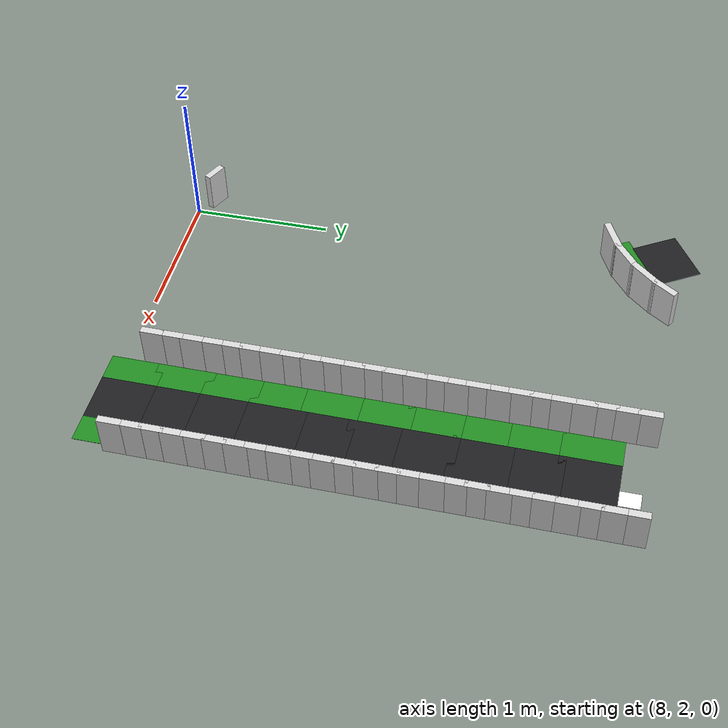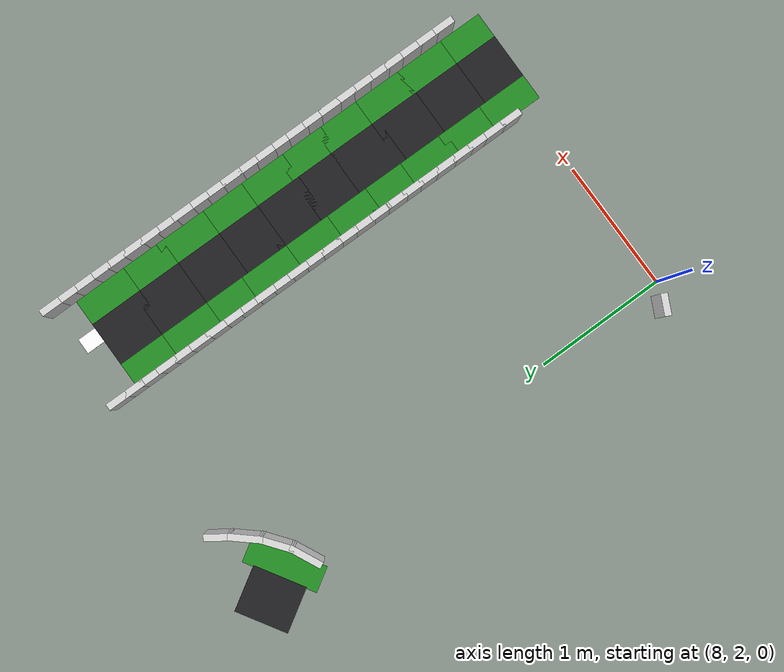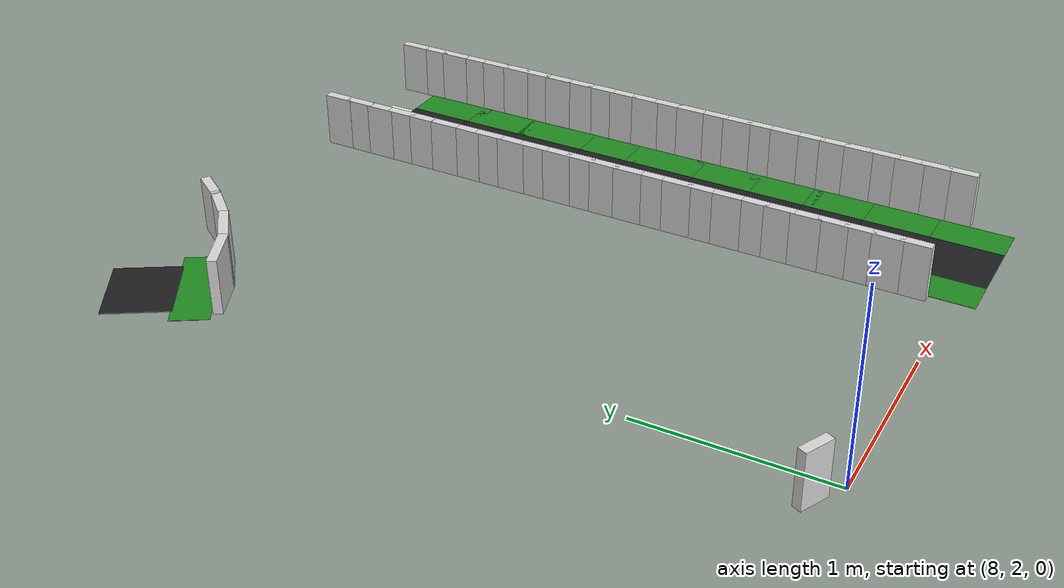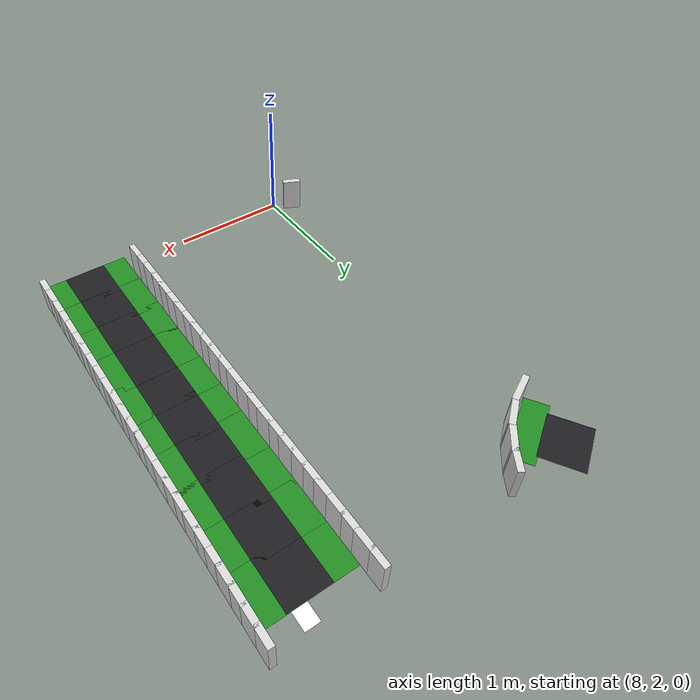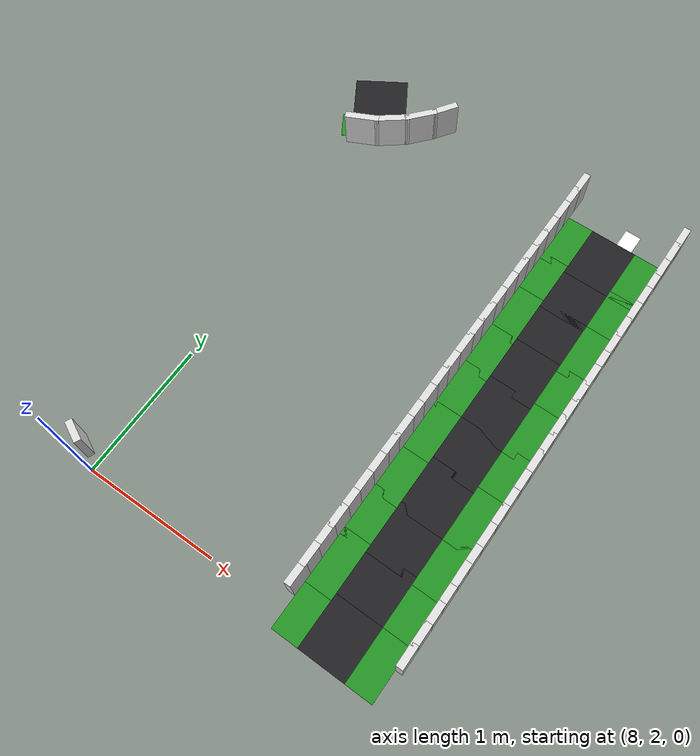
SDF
<sdf version="1.8">
 <world name="it_arena_track">
  <model name="it_arena_track_static">
   <static>true</static>
   <link name="surface_main_47">
    <pose>7.8082 5.5504 0.0015 0 0 -2.59347</pose>
    <collision name="surface_main_47_col">
     <geometry><box><size>0.4088 0.3500 0.0030</size></box></geometry>
    </collision>
    <visual name="surface_main_47_vis">
     <geometry><box><size>0.4088 0.3500 0.0030</size></box></geometry>
     <material><ambient>0.12 0.12 0.13 1</ambient><diffuse>0.12 0.12 0.13 1</diffuse></material>
    </visual>
   </link>
   <link name="surface_main_120">
    <pose>9.9361 2.0771 0.0015 0 0 1.56391</pose>
    <collision name="surface_main_120_col">
     <geometry><box><size>0.3910 0.3500 0.0030</size></box></geometry>
    </collision>
    <visual name="surface_main_120_vis">
     <geometry><box><size>0.3910 0.3500 0.0030</size></box></geometry>
     <material><ambient>0.12 0.12 0.13 1</ambient><diffuse>0.12 0.12 0.13 1</diffuse></material>
    </visual>
   </link>
   <link name="surface_main_121">
    <pose>9.9385 2.4270 0.0015 0 0 1.56408</pose>
    <collision name="surface_main_121_col">
     <geometry><box><size>0.4140 0.3500 0.0030</size></box></geometry>
    </collision>
    <visual name="surface_main_121_vis">
     <geometry><box><size>0.4140 0.3500 0.0030</size></box></geometry>
     <material><ambient>0.12 0.12 0.13 1</ambient><diffuse>0.12 0.12 0.13 1</diffuse></material>
    </visual>
   </link>
   <link name="surface_main_122">
    <pose>9.9409 2.7770 0.0015 0 0 1.56397</pose>
    <collision name="surface_main_122_col">
     <geometry><box><size>0.3910 0.3500 0.0030</size></box></geometry>
    </collision>
    <visual name="surface_main_122_vis">
     <geometry><box><size>0.3910 0.3500 0.0030</size></box></geometry>
     <material><ambient>0.12 0.12 0.13 1</ambient><diffuse>0.12 0.12 0.13 1</diffuse></material>
    </visual>
   </link>
   <link name="surface_main_123">
    <pose>9.9433 3.1269 0.0015 0 0 1.56407</pose>
    <collision name="surface_main_123_col">
     <geometry><box><size>0.4140 0.3500 0.0030</size></box></geometry>
    </collision>
    <visual name="surface_main_123_vis">
     <geometry><box><size>0.4140 0.3500 0.0030</size></box></geometry>
     <material><ambient>0.12 0.12 0.13 1</ambient><diffuse>0.12 0.12 0.13 1</diffuse></material>
    </visual>
   </link>
   <link name="surface_main_124">
    <pose>9.9456 3.4769 0.0015 0 0 1.56391</pose>
    <collision name="surface_main_124_col">
     <geometry><box><size>0.3910 0.3500 0.0030</size></box></geometry>
    </collision>
    <visual name="surface_main_124_vis">
     <geometry><box><size>0.3910 0.3500 0.0030</size></box></geometry>
     <material><ambient>0.12 0.12 0.13 1</ambient><diffuse>0.12 0.12 0.13 1</diffuse></material>
    </visual>
   </link>
   <link name="surface_main_125">
    <pose>9.9480 3.8269 0.0015 0 0 1.56396</pose>
    <collision name="surface_main_125_col">
     <geometry><box><size>0.4140 0.3500 0.0030</size></box></geometry>
    </collision>
    <visual name="surface_main_125_vis">
     <geometry><box><size>0.4140 0.3500 0.0030</size></box></geometry>
     <material><ambient>0.12 0.12 0.13 1</ambient><diffuse>0.12 0.12 0.13 1</diffuse></material>
    </visual>
   </link>
   <link name="surface_main_126">
    <pose>9.9504 4.1768 0.0015 0 0 1.56391</pose>
    <collision name="surface_main_126_col">
     <geometry><box><size>0.3910 0.3500 0.0030</size></box></geometry>
    </collision>
    <visual name="surface_main_126_vis">
     <geometry><box><size>0.3910 0.3500 0.0030</size></box></geometry>
     <material><ambient>0.12 0.12 0.13 1</ambient><diffuse>0.12 0.12 0.13 1</diffuse></material>
    </visual>
   </link>
   <link name="surface_main_127">
    <pose>9.9528 4.5268 0.0015 0 0 1.56408</pose>
    <collision name="surface_main_127_col">
     <geometry><box><size>0.4140 0.3500 0.0030</size></box></geometry>
    </collision>
    <visual name="surface_main_127_vis">
     <geometry><box><size>0.4140 0.3500 0.0030</size></box></geometry>
     <material><ambient>0.12 0.12 0.13 1</ambient><diffuse>0.12 0.12 0.13 1</diffuse></material>
    </visual>
   </link>
   <link name="surface_main_128">
    <pose>9.9552 4.8767 0.0015 0 0 1.56397</pose>
    <collision name="surface_main_128_col">
     <geometry><box><size>0.3910 0.3500 0.0030</size></box></geometry>
    </collision>
    <visual name="surface_main_128_vis">
     <geometry><box><size>0.3910 0.3500 0.0030</size></box></geometry>
     <material><ambient>0.12 0.12 0.13 1</ambient><diffuse>0.12 0.12 0.13 1</diffuse></material>
    </visual>
   </link>
   <link name="surface_main_129">
    <pose>9.9576 5.2267 0.0015 0 0 1.56407</pose>
    <collision name="surface_main_129_col">
     <geometry><box><size>0.4140 0.3500 0.0030</size></box></geometry>
    </collision>
    <visual name="surface_main_129_vis">
     <geometry><box><size>0.4140 0.3500 0.0030</size></box></geometry>
     <material><ambient>0.12 0.12 0.13 1</ambient><diffuse>0.12 0.12 0.13 1</diffuse></material>
    </visual>
   </link>
   <link name="grass_main_left_47">
    <pose>7.9485 5.3250 0.0010 0 0 -2.59097</pose>
    <collision name="grass_main_left_47_col">
     <geometry><box><size>0.5738 0.2000 0.0020</size></box></geometry>
    </collision>
    <visual name="grass_main_left_47_vis">
     <geometry><box><size>0.5738 0.2000 0.0020</size></box></geometry>
     <material><ambient>0.13 0.55 0.13 1</ambient><diffuse>0.13 0.55 0.13 1</diffuse></material>
    </visual>
   </link>
   <link name="grass_main_left_115">
    <pose>9.6612 2.0787 0.0010 0 0 1.56391</pose>
    <collision name="grass_main_left_115_col">
     <geometry><box><size>0.3910 0.2000 0.0020</size></box></geometry>
    </collision>
    <visual name="grass_main_left_115_vis">
     <geometry><box><size>0.3910 0.2000 0.0020</size></box></geometry>
     <material><ambient>0.13 0.55 0.13 1</ambient><diffuse>0.13 0.55 0.13 1</diffuse></material>
    </visual>
   </link>
   <link name="grass_main_left_116">
    <pose>9.6635 2.4290 0.0010 0 0 1.56408</pose>
    <collision name="grass_main_left_116_col">
     <geometry><box><size>0.4146 0.2000 0.0020</size></box></geometry>
    </collision>
    <visual name="grass_main_left_116_vis">
     <geometry><box><size>0.4146 0.2000 0.0020</size></box></geometry>
     <material><ambient>0.13 0.55 0.13 1</ambient><diffuse>0.13 0.55 0.13 1</diffuse></material>
    </visual>
   </link>
   <link name="grass_main_left_117">
    <pose>9.6659 2.7792 0.0010 0 0 1.56397</pose>
    <collision name="grass_main_left_117_col">
     <geometry><box><size>0.3909 0.2000 0.0020</size></box></geometry>
    </collision>
    <visual name="grass_main_left_117_vis">
     <geometry><box><size>0.3909 0.2000 0.0020</size></box></geometry>
     <material><ambient>0.13 0.55 0.13 1</ambient><diffuse>0.13 0.55 0.13 1</diffuse></material>
    </visual>
   </link>
   <link name="grass_main_left_118">
    <pose>9.6683 3.1289 0.0010 0 0 1.56407</pose>
    <collision name="grass_main_left_118_col">
     <geometry><box><size>0.4133 0.2000 0.0020</size></box></geometry>
    </collision>
    <visual name="grass_main_left_118_vis">
     <geometry><box><size>0.4133 0.2000 0.0020</size></box></geometry>
     <material><ambient>0.13 0.55 0.13 1</ambient><diffuse>0.13 0.55 0.13 1</diffuse></material>
    </visual>
   </link>
   <link name="grass_main_left_119">
    <pose>9.6706 3.4786 0.0010 0 0 1.56391</pose>
    <collision name="grass_main_left_119_col">
     <geometry><box><size>0.3910 0.2000 0.0020</size></box></geometry>
    </collision>
    <visual name="grass_main_left_119_vis">
     <geometry><box><size>0.3910 0.2000 0.0020</size></box></geometry>
     <material><ambient>0.13 0.55 0.13 1</ambient><diffuse>0.13 0.55 0.13 1</diffuse></material>
    </visual>
   </link>
   <link name="grass_main_left_120">
    <pose>9.6730 3.8285 0.0010 0 0 1.56396</pose>
    <collision name="grass_main_left_120_col">
     <geometry><box><size>0.4139 0.2000 0.0020</size></box></geometry>
    </collision>
    <visual name="grass_main_left_120_vis">
     <geometry><box><size>0.4139 0.2000 0.0020</size></box></geometry>
     <material><ambient>0.13 0.55 0.13 1</ambient><diffuse>0.13 0.55 0.13 1</diffuse></material>
    </visual>
   </link>
   <link name="grass_main_left_121">
    <pose>9.6754 4.1785 0.0010 0 0 1.56391</pose>
    <collision name="grass_main_left_121_col">
     <geometry><box><size>0.3910 0.2000 0.0020</size></box></geometry>
    </collision>
    <visual name="grass_main_left_121_vis">
     <geometry><box><size>0.3910 0.2000 0.0020</size></box></geometry>
     <material><ambient>0.13 0.55 0.13 1</ambient><diffuse>0.13 0.55 0.13 1</diffuse></material>
    </visual>
   </link>
   <link name="grass_main_left_122">
    <pose>9.6778 4.5287 0.0010 0 0 1.56408</pose>
    <collision name="grass_main_left_122_col">
     <geometry><box><size>0.4146 0.2000 0.0020</size></box></geometry>
    </collision>
    <visual name="grass_main_left_122_vis">
     <geometry><box><size>0.4146 0.2000 0.0020</size></box></geometry>
     <material><ambient>0.13 0.55 0.13 1</ambient><diffuse>0.13 0.55 0.13 1</diffuse></material>
    </visual>
   </link>
   <link name="grass_main_left_123">
    <pose>9.6802 4.8789 0.0010 0 0 1.56397</pose>
    <collision name="grass_main_left_123_col">
     <geometry><box><size>0.3909 0.2000 0.0020</size></box></geometry>
    </collision>
    <visual name="grass_main_left_123_vis">
     <geometry><box><size>0.3909 0.2000 0.0020</size></box></geometry>
     <material><ambient>0.13 0.55 0.13 1</ambient><diffuse>0.13 0.55 0.13 1</diffuse></material>
    </visual>
   </link>
   <link name="grass_main_left_124">
    <pose>9.6826 5.2286 0.0010 0 0 1.56407</pose>
    <collision name="grass_main_left_124_col">
     <geometry><box><size>0.4133 0.2000 0.0020</size></box></geometry>
    </collision>
    <visual name="grass_main_left_124_vis">
     <geometry><box><size>0.4133 0.2000 0.0020</size></box></geometry>
     <material><ambient>0.13 0.55 0.13 1</ambient><diffuse>0.13 0.55 0.13 1</diffuse></material>
    </visual>
   </link>
   <link name="grass_main_right_114">
    <pose>10.2111 2.0754 0.0010 0 0 1.56391</pose>
    <collision name="grass_main_right_114_col">
     <geometry><box><size>0.3909 0.2000 0.0020</size></box></geometry>
    </collision>
    <visual name="grass_main_right_114_vis">
     <geometry><box><size>0.3909 0.2000 0.0020</size></box></geometry>
     <material><ambient>0.13 0.55 0.13 1</ambient><diffuse>0.13 0.55 0.13 1</diffuse></material>
    </visual>
   </link>
   <link name="grass_main_right_115">
    <pose>10.2135 2.4251 0.0010 0 0 1.56408</pose>
    <collision name="grass_main_right_115_col">
     <geometry><box><size>0.4133 0.2000 0.0020</size></box></geometry>
    </collision>
    <visual name="grass_main_right_115_vis">
     <geometry><box><size>0.4133 0.2000 0.0020</size></box></geometry>
     <material><ambient>0.13 0.55 0.13 1</ambient><diffuse>0.13 0.55 0.13 1</diffuse></material>
    </visual>
   </link>
   <link name="grass_main_right_116">
    <pose>10.2159 2.7748 0.0010 0 0 1.56397</pose>
    <collision name="grass_main_right_116_col">
     <geometry><box><size>0.3910 0.2000 0.0020</size></box></geometry>
    </collision>
    <visual name="grass_main_right_116_vis">
     <geometry><box><size>0.3910 0.2000 0.0020</size></box></geometry>
     <material><ambient>0.13 0.55 0.13 1</ambient><diffuse>0.13 0.55 0.13 1</diffuse></material>
    </visual>
   </link>
   <link name="grass_main_right_117">
    <pose>10.2183 3.1250 0.0010 0 0 1.56407</pose>
    <collision name="grass_main_right_117_col">
     <geometry><box><size>0.4146 0.2000 0.0020</size></box></geometry>
    </collision>
    <visual name="grass_main_right_117_vis">
     <geometry><box><size>0.4146 0.2000 0.0020</size></box></geometry>
     <material><ambient>0.13 0.55 0.13 1</ambient><diffuse>0.13 0.55 0.13 1</diffuse></material>
    </visual>
   </link>
   <link name="grass_main_right_118">
    <pose>10.2206 3.4752 0.0010 0 0 1.56391</pose>
    <collision name="grass_main_right_118_col">
     <geometry><box><size>0.3909 0.2000 0.0020</size></box></geometry>
    </collision>
    <visual name="grass_main_right_118_vis">
     <geometry><box><size>0.3909 0.2000 0.0020</size></box></geometry>
     <material><ambient>0.13 0.55 0.13 1</ambient><diffuse>0.13 0.55 0.13 1</diffuse></material>
    </visual>
   </link>
   <link name="grass_main_right_119">
    <pose>10.2230 3.8252 0.0010 0 0 1.56396</pose>
    <collision name="grass_main_right_119_col">
     <geometry><box><size>0.4140 0.2000 0.0020</size></box></geometry>
    </collision>
    <visual name="grass_main_right_119_vis">
     <geometry><box><size>0.4140 0.2000 0.0020</size></box></geometry>
     <material><ambient>0.13 0.55 0.13 1</ambient><diffuse>0.13 0.55 0.13 1</diffuse></material>
    </visual>
   </link>
   <link name="grass_main_right_120">
    <pose>10.2254 4.1751 0.0010 0 0 1.56391</pose>
    <collision name="grass_main_right_120_col">
     <geometry><box><size>0.3909 0.2000 0.0020</size></box></geometry>
    </collision>
    <visual name="grass_main_right_120_vis">
     <geometry><box><size>0.3909 0.2000 0.0020</size></box></geometry>
     <material><ambient>0.13 0.55 0.13 1</ambient><diffuse>0.13 0.55 0.13 1</diffuse></material>
    </visual>
   </link>
   <link name="grass_main_right_121">
    <pose>10.2278 4.5248 0.0010 0 0 1.56408</pose>
    <collision name="grass_main_right_121_col">
     <geometry><box><size>0.4133 0.2000 0.0020</size></box></geometry>
    </collision>
    <visual name="grass_main_right_121_vis">
     <geometry><box><size>0.4133 0.2000 0.0020</size></box></geometry>
     <material><ambient>0.13 0.55 0.13 1</ambient><diffuse>0.13 0.55 0.13 1</diffuse></material>
    </visual>
   </link>
   <link name="grass_main_right_122">
    <pose>10.2302 4.8745 0.0010 0 0 1.56397</pose>
    <collision name="grass_main_right_122_col">
     <geometry><box><size>0.3910 0.2000 0.0020</size></box></geometry>
    </collision>
    <visual name="grass_main_right_122_vis">
     <geometry><box><size>0.3910 0.2000 0.0020</size></box></geometry>
     <material><ambient>0.13 0.55 0.13 1</ambient><diffuse>0.13 0.55 0.13 1</diffuse></material>
    </visual>
   </link>
   <link name="grass_main_right_123">
    <pose>10.2326 5.2247 0.0010 0 0 1.56407</pose>
    <collision name="grass_main_right_123_col">
     <geometry><box><size>0.4146 0.2000 0.0020</size></box></geometry>
    </collision>
    <visual name="grass_main_right_123_vis">
     <geometry><box><size>0.4146 0.2000 0.0020</size></box></geometry>
     <material><ambient>0.13 0.55 0.13 1</ambient><diffuse>0.13 0.55 0.13 1</diffuse></material>
    </visual>
   </link>
   <link name="walls_main_left_116">
    <pose>8.3938 5.5530 0.1500 0 0 -2.16776</pose>
    <collision name="walls_main_left_116_col">
     <geometry><box><size>0.1933 0.0500 0.3000</size></box></geometry>
     <surface><friction><ode><mu>0.8</mu><mu2>0.8</mu2></ode></friction></surface>
    </collision>
    <visual name="walls_main_left_116_vis">
     <geometry><box><size>0.1933 0.0500 0.3000</size></box></geometry>
     <material><ambient>0.85 0.85 0.85 1</ambient><diffuse>0.85 0.85 0.85 1</diffuse></material>
    </visual>
   </link>
   <link name="walls_main_left_117">
    <pose>8.2761 5.4033 0.1500 0 0 -2.29173</pose>
    <collision name="walls_main_left_117_col">
     <geometry><box><size>0.2456 0.0500 0.3000</size></box></geometry>
     <surface><friction><ode><mu>0.8</mu><mu2>0.8</mu2></ode></friction></surface>
    </collision>
    <visual name="walls_main_left_117_vis">
     <geometry><box><size>0.2456 0.0500 0.3000</size></box></geometry>
     <material><ambient>0.85 0.85 0.85 1</ambient><diffuse>0.85 0.85 0.85 1</diffuse></material>
    </visual>
   </link>
   <link name="walls_main_left_118">
    <pose>8.1164 5.2550 0.1500 0 0 -2.48950</pose>
    <collision name="walls_main_left_118_col">
     <geometry><box><size>0.2582 0.0500 0.3000</size></box></geometry>
     <surface><friction><ode><mu>0.8</mu><mu2>0.8</mu2></ode></friction></surface>
    </collision>
    <visual name="walls_main_left_118_vis">
     <geometry><box><size>0.2582 0.0500 0.3000</size></box></geometry>
     <material><ambient>0.85 0.85 0.85 1</ambient><diffuse>0.85 0.85 0.85 1</diffuse></material>
    </visual>
   </link>
   <link name="walls_main_left_119">
    <pose>7.9278 5.1399 0.1500 0 0 -2.69994</pose>
    <collision name="walls_main_left_119_col">
     <geometry><box><size>0.2528 0.0500 0.3000</size></box></geometry>
     <surface><friction><ode><mu>0.8</mu><mu2>0.8</mu2></ode></friction></surface>
    </collision>
    <visual name="walls_main_left_119_vis">
     <geometry><box><size>0.2528 0.0500 0.3000</size></box></geometry>
     <material><ambient>0.85 0.85 0.85 1</ambient><diffuse>0.85 0.85 0.85 1</diffuse></material>
    </visual>
   </link>
   <link name="walls_main_left_268">
    <pose>7.8570 2.1067 0.1500 0 0 -0.44761</pose>
    <collision name="walls_main_left_268_col">
     <geometry><box><size>0.1610 0.0500 0.3000</size></box></geometry>
     <surface><friction><ode><mu>0.8</mu><mu2>0.8</mu2></ode></friction></surface>
    </collision>
    <visual name="walls_main_left_268_vis">
     <geometry><box><size>0.1610 0.0500 0.3000</size></box></geometry>
     <material><ambient>0.85 0.85 0.85 1</ambient><diffuse>0.85 0.85 0.85 1</diffuse></material>
    </visual>
   </link>
   <link name="walls_main_left_291">
    <pose>9.5370 2.1997 0.1500 0 0 1.56407</pose>
    <collision name="walls_main_left_291_col">
     <geometry><box><size>0.1605 0.0500 0.3000</size></box></geometry>
     <surface><friction><ode><mu>0.8</mu><mu2>0.8</mu2></ode></friction></surface>
    </collision>
    <visual name="walls_main_left_291_vis">
     <geometry><box><size>0.1605 0.0500 0.3000</size></box></geometry>
     <material><ambient>0.85 0.85 0.85 1</ambient><diffuse>0.85 0.85 0.85 1</diffuse></material>
    </visual>
   </link>
   <link name="walls_main_left_292">
    <pose>9.5379 2.3394 0.1500 0 0 1.56408</pose>
    <collision name="walls_main_left_292_col">
     <geometry><box><size>0.1610 0.0500 0.3000</size></box></geometry>
     <surface><friction><ode><mu>0.8</mu><mu2>0.8</mu2></ode></friction></surface>
    </collision>
    <visual name="walls_main_left_292_vis">
     <geometry><box><size>0.1610 0.0500 0.3000</size></box></geometry>
     <material><ambient>0.85 0.85 0.85 1</ambient><diffuse>0.85 0.85 0.85 1</diffuse></material>
    </visual>
   </link>
   <link name="walls_main_left_293">
    <pose>9.5389 2.4794 0.1500 0 0 1.56408</pose>
    <collision name="walls_main_left_293_col">
     <geometry><box><size>0.1610 0.0500 0.3000</size></box></geometry>
     <surface><friction><ode><mu>0.8</mu><mu2>0.8</mu2></ode></friction></surface>
    </collision>
    <visual name="walls_main_left_293_vis">
     <geometry><box><size>0.1610 0.0500 0.3000</size></box></geometry>
     <material><ambient>0.85 0.85 0.85 1</ambient><diffuse>0.85 0.85 0.85 1</diffuse></material>
    </visual>
   </link>
   <link name="walls_main_left_294">
    <pose>9.5398 2.6197 0.1500 0 0 1.56395</pose>
    <collision name="walls_main_left_294_col">
     <geometry><box><size>0.1617 0.0500 0.3000</size></box></geometry>
     <surface><friction><ode><mu>0.8</mu><mu2>0.8</mu2></ode></friction></surface>
    </collision>
    <visual name="walls_main_left_294_vis">
     <geometry><box><size>0.1617 0.0500 0.3000</size></box></geometry>
     <material><ambient>0.85 0.85 0.85 1</ambient><diffuse>0.85 0.85 0.85 1</diffuse></material>
    </visual>
   </link>
   <link name="walls_main_left_295">
    <pose>9.5407 2.7599 0.1500 0 0 1.56421</pose>
    <collision name="walls_main_left_295_col">
     <geometry><box><size>0.1608 0.0500 0.3000</size></box></geometry>
     <surface><friction><ode><mu>0.8</mu><mu2>0.8</mu2></ode></friction></surface>
    </collision>
    <visual name="walls_main_left_295_vis">
     <geometry><box><size>0.1608 0.0500 0.3000</size></box></geometry>
     <material><ambient>0.85 0.85 0.85 1</ambient><diffuse>0.85 0.85 0.85 1</diffuse></material>
    </visual>
   </link>
   <link name="walls_main_left_296">
    <pose>9.5417 2.8999 0.1500 0 0 1.56352</pose>
    <collision name="walls_main_left_296_col">
     <geometry><box><size>0.1613 0.0500 0.3000</size></box></geometry>
     <surface><friction><ode><mu>0.8</mu><mu2>0.8</mu2></ode></friction></surface>
    </collision>
    <visual name="walls_main_left_296_vis">
     <geometry><box><size>0.1613 0.0500 0.3000</size></box></geometry>
     <material><ambient>0.85 0.85 0.85 1</ambient><diffuse>0.85 0.85 0.85 1</diffuse></material>
    </visual>
   </link>
   <link name="walls_main_left_297">
    <pose>9.5427 3.0401 0.1500 0 0 1.56422</pose>
    <collision name="walls_main_left_297_col">
     <geometry><box><size>0.1612 0.0500 0.3000</size></box></geometry>
     <surface><friction><ode><mu>0.8</mu><mu2>0.8</mu2></ode></friction></surface>
    </collision>
    <visual name="walls_main_left_297_vis">
     <geometry><box><size>0.1612 0.0500 0.3000</size></box></geometry>
     <material><ambient>0.85 0.85 0.85 1</ambient><diffuse>0.85 0.85 0.85 1</diffuse></material>
    </visual>
   </link>
   <link name="walls_main_left_298">
    <pose>9.5436 3.1797 0.1500 0 0 1.56378</pose>
    <collision name="walls_main_left_298_col">
     <geometry><box><size>0.1601 0.0500 0.3000</size></box></geometry>
     <surface><friction><ode><mu>0.8</mu><mu2>0.8</mu2></ode></friction></surface>
    </collision>
    <visual name="walls_main_left_298_vis">
     <geometry><box><size>0.1601 0.0500 0.3000</size></box></geometry>
     <material><ambient>0.85 0.85 0.85 1</ambient><diffuse>0.85 0.85 0.85 1</diffuse></material>
    </visual>
   </link>
   <link name="walls_main_left_299">
    <pose>9.5446 3.3194 0.1500 0 0 1.56408</pose>
    <collision name="walls_main_left_299_col">
     <geometry><box><size>0.1612 0.0500 0.3000</size></box></geometry>
     <surface><friction><ode><mu>0.8</mu><mu2>0.8</mu2></ode></friction></surface>
    </collision>
    <visual name="walls_main_left_299_vis">
     <geometry><box><size>0.1612 0.0500 0.3000</size></box></geometry>
     <material><ambient>0.85 0.85 0.85 1</ambient><diffuse>0.85 0.85 0.85 1</diffuse></material>
    </visual>
   </link>
   <link name="walls_main_left_300">
    <pose>9.5455 3.4594 0.1500 0 0 1.56408</pose>
    <collision name="walls_main_left_300_col">
     <geometry><box><size>0.1607 0.0500 0.3000</size></box></geometry>
     <surface><friction><ode><mu>0.8</mu><mu2>0.8</mu2></ode></friction></surface>
    </collision>
    <visual name="walls_main_left_300_vis">
     <geometry><box><size>0.1607 0.0500 0.3000</size></box></geometry>
     <material><ambient>0.85 0.85 0.85 1</ambient><diffuse>0.85 0.85 0.85 1</diffuse></material>
    </visual>
   </link>
   <link name="walls_main_left_301">
    <pose>9.5465 3.5994 0.1500 0 0 1.56408</pose>
    <collision name="walls_main_left_301_col">
     <geometry><box><size>0.1612 0.0500 0.3000</size></box></geometry>
     <surface><friction><ode><mu>0.8</mu><mu2>0.8</mu2></ode></friction></surface>
    </collision>
    <visual name="walls_main_left_301_vis">
     <geometry><box><size>0.1612 0.0500 0.3000</size></box></geometry>
     <material><ambient>0.85 0.85 0.85 1</ambient><diffuse>0.85 0.85 0.85 1</diffuse></material>
    </visual>
   </link>
   <link name="walls_main_left_302">
    <pose>9.5474 3.7394 0.1500 0 0 1.56408</pose>
    <collision name="walls_main_left_302_col">
     <geometry><box><size>0.1608 0.0500 0.3000</size></box></geometry>
     <surface><friction><ode><mu>0.8</mu><mu2>0.8</mu2></ode></friction></surface>
    </collision>
    <visual name="walls_main_left_302_vis">
     <geometry><box><size>0.1608 0.0500 0.3000</size></box></geometry>
     <material><ambient>0.85 0.85 0.85 1</ambient><diffuse>0.85 0.85 0.85 1</diffuse></material>
    </visual>
   </link>
   <link name="walls_main_left_303">
    <pose>9.5484 3.8796 0.1500 0 0 1.56381</pose>
    <collision name="walls_main_left_303_col">
     <geometry><box><size>0.1619 0.0500 0.3000</size></box></geometry>
     <surface><friction><ode><mu>0.8</mu><mu2>0.8</mu2></ode></friction></surface>
    </collision>
    <visual name="walls_main_left_303_vis">
     <geometry><box><size>0.1619 0.0500 0.3000</size></box></geometry>
     <material><ambient>0.85 0.85 0.85 1</ambient><diffuse>0.85 0.85 0.85 1</diffuse></material>
    </visual>
   </link>
   <link name="walls_main_left_304">
    <pose>9.5494 4.0197 0.1500 0 0 1.56364</pose>
    <collision name="walls_main_left_304_col">
     <geometry><box><size>0.1603 0.0500 0.3000</size></box></geometry>
     <surface><friction><ode><mu>0.8</mu><mu2>0.8</mu2></ode></friction></surface>
    </collision>
    <visual name="walls_main_left_304_vis">
     <geometry><box><size>0.1603 0.0500 0.3000</size></box></geometry>
     <material><ambient>0.85 0.85 0.85 1</ambient><diffuse>0.85 0.85 0.85 1</diffuse></material>
    </visual>
   </link>
   <link name="walls_main_left_305">
    <pose>9.5503 4.1595 0.1500 0 0 1.56410</pose>
    <collision name="walls_main_left_305_col">
     <geometry><box><size>0.1612 0.0500 0.3000</size></box></geometry>
     <surface><friction><ode><mu>0.8</mu><mu2>0.8</mu2></ode></friction></surface>
    </collision>
    <visual name="walls_main_left_305_vis">
     <geometry><box><size>0.1612 0.0500 0.3000</size></box></geometry>
     <material><ambient>0.85 0.85 0.85 1</ambient><diffuse>0.85 0.85 0.85 1</diffuse></material>
    </visual>
   </link>
   <link name="walls_main_left_306">
    <pose>9.5513 4.2994 0.1500 0 0 1.56407</pose>
    <collision name="walls_main_left_306_col">
     <geometry><box><size>0.1605 0.0500 0.3000</size></box></geometry>
     <surface><friction><ode><mu>0.8</mu><mu2>0.8</mu2></ode></friction></surface>
    </collision>
    <visual name="walls_main_left_306_vis">
     <geometry><box><size>0.1605 0.0500 0.3000</size></box></geometry>
     <material><ambient>0.85 0.85 0.85 1</ambient><diffuse>0.85 0.85 0.85 1</diffuse></material>
    </visual>
   </link>
   <link name="walls_main_left_307">
    <pose>9.5522 4.4392 0.1500 0 0 1.56408</pose>
    <collision name="walls_main_left_307_col">
     <geometry><box><size>0.1610 0.0500 0.3000</size></box></geometry>
     <surface><friction><ode><mu>0.8</mu><mu2>0.8</mu2></ode></friction></surface>
    </collision>
    <visual name="walls_main_left_307_vis">
     <geometry><box><size>0.1610 0.0500 0.3000</size></box></geometry>
     <material><ambient>0.85 0.85 0.85 1</ambient><diffuse>0.85 0.85 0.85 1</diffuse></material>
    </visual>
   </link>
   <link name="walls_main_left_308">
    <pose>9.5532 4.5792 0.1500 0 0 1.56408</pose>
    <collision name="walls_main_left_308_col">
     <geometry><box><size>0.1610 0.0500 0.3000</size></box></geometry>
     <surface><friction><ode><mu>0.8</mu><mu2>0.8</mu2></ode></friction></surface>
    </collision>
    <visual name="walls_main_left_308_vis">
     <geometry><box><size>0.1610 0.0500 0.3000</size></box></geometry>
     <material><ambient>0.85 0.85 0.85 1</ambient><diffuse>0.85 0.85 0.85 1</diffuse></material>
    </visual>
   </link>
   <link name="walls_main_left_309">
    <pose>9.5541 4.7194 0.1500 0 0 1.56396</pose>
    <collision name="walls_main_left_309_col">
     <geometry><box><size>0.1616 0.0500 0.3000</size></box></geometry>
     <surface><friction><ode><mu>0.8</mu><mu2>0.8</mu2></ode></friction></surface>
    </collision>
    <visual name="walls_main_left_309_vis">
     <geometry><box><size>0.1616 0.0500 0.3000</size></box></geometry>
     <material><ambient>0.85 0.85 0.85 1</ambient><diffuse>0.85 0.85 0.85 1</diffuse></material>
    </visual>
   </link>
   <link name="walls_main_left_310">
    <pose>9.5550 4.8596 0.1500 0 0 1.56421</pose>
    <collision name="walls_main_left_310_col">
     <geometry><box><size>0.1608 0.0500 0.3000</size></box></geometry>
     <surface><friction><ode><mu>0.8</mu><mu2>0.8</mu2></ode></friction></surface>
    </collision>
    <visual name="walls_main_left_310_vis">
     <geometry><box><size>0.1608 0.0500 0.3000</size></box></geometry>
     <material><ambient>0.85 0.85 0.85 1</ambient><diffuse>0.85 0.85 0.85 1</diffuse></material>
    </visual>
   </link>
   <link name="walls_main_left_311">
    <pose>9.5560 4.9996 0.1500 0 0 1.56353</pose>
    <collision name="walls_main_left_311_col">
     <geometry><box><size>0.1613 0.0500 0.3000</size></box></geometry>
     <surface><friction><ode><mu>0.8</mu><mu2>0.8</mu2></ode></friction></surface>
    </collision>
    <visual name="walls_main_left_311_vis">
     <geometry><box><size>0.1613 0.0500 0.3000</size></box></geometry>
     <material><ambient>0.85 0.85 0.85 1</ambient><diffuse>0.85 0.85 0.85 1</diffuse></material>
    </visual>
   </link>
   <link name="walls_main_left_312">
    <pose>9.5570 5.1398 0.1500 0 0 1.56422</pose>
    <collision name="walls_main_left_312_col">
     <geometry><box><size>0.1612 0.0500 0.3000</size></box></geometry>
     <surface><friction><ode><mu>0.8</mu><mu2>0.8</mu2></ode></friction></surface>
    </collision>
    <visual name="walls_main_left_312_vis">
     <geometry><box><size>0.1612 0.0500 0.3000</size></box></geometry>
     <material><ambient>0.85 0.85 0.85 1</ambient><diffuse>0.85 0.85 0.85 1</diffuse></material>
    </visual>
   </link>
   <link name="walls_main_left_313">
    <pose>9.5579 5.2795 0.1500 0 0 1.56378</pose>
    <collision name="walls_main_left_313_col">
     <geometry><box><size>0.1601 0.0500 0.3000</size></box></geometry>
     <surface><friction><ode><mu>0.8</mu><mu2>0.8</mu2></ode></friction></surface>
    </collision>
    <visual name="walls_main_left_313_vis">
     <geometry><box><size>0.1601 0.0500 0.3000</size></box></geometry>
     <material><ambient>0.85 0.85 0.85 1</ambient><diffuse>0.85 0.85 0.85 1</diffuse></material>
    </visual>
   </link>
   <link name="walls_main_left_314">
    <pose>9.5589 5.4192 0.1500 0 0 1.56408</pose>
    <collision name="walls_main_left_314_col">
     <geometry><box><size>0.1612 0.0500 0.3000</size></box></geometry>
     <surface><friction><ode><mu>0.8</mu><mu2>0.8</mu2></ode></friction></surface>
    </collision>
    <visual name="walls_main_left_314_vis">
     <geometry><box><size>0.1612 0.0500 0.3000</size></box></geometry>
     <material><ambient>0.85 0.85 0.85 1</ambient><diffuse>0.85 0.85 0.85 1</diffuse></material>
    </visual>
   </link>
   <link name="walls_main_left_315">
    <pose>9.5598 5.5593 0.1500 0 0 1.56408</pose>
    <collision name="walls_main_left_315_col">
     <geometry><box><size>0.1612 0.0500 0.3000</size></box></geometry>
     <surface><friction><ode><mu>0.8</mu><mu2>0.8</mu2></ode></friction></surface>
    </collision>
    <visual name="walls_main_left_315_vis">
     <geometry><box><size>0.1612 0.0500 0.3000</size></box></geometry>
     <material><ambient>0.85 0.85 0.85 1</ambient><diffuse>0.85 0.85 0.85 1</diffuse></material>
    </visual>
   </link>
   <link name="walls_main_right_287">
    <pose>10.3370 2.1945 0.1500 0 0 1.56407</pose>
    <collision name="walls_main_right_287_col">
     <geometry><box><size>0.1615 0.0500 0.3000</size></box></geometry>
     <surface><friction><ode><mu>0.8</mu><mu2>0.8</mu2></ode></friction></surface>
    </collision>
    <visual name="walls_main_right_287_vis">
     <geometry><box><size>0.1615 0.0500 0.3000</size></box></geometry>
     <material><ambient>0.85 0.85 0.85 1</ambient><diffuse>0.85 0.85 0.85 1</diffuse></material>
    </visual>
   </link>
   <link name="walls_main_right_288">
    <pose>10.3379 2.3346 0.1500 0 0 1.56408</pose>
    <collision name="walls_main_right_288_col">
     <geometry><box><size>0.1610 0.0500 0.3000</size></box></geometry>
     <surface><friction><ode><mu>0.8</mu><mu2>0.8</mu2></ode></friction></surface>
    </collision>
    <visual name="walls_main_right_288_vis">
     <geometry><box><size>0.1610 0.0500 0.3000</size></box></geometry>
     <material><ambient>0.85 0.85 0.85 1</ambient><diffuse>0.85 0.85 0.85 1</diffuse></material>
    </visual>
   </link>
   <link name="walls_main_right_289">
    <pose>10.3388 2.4746 0.1500 0 0 1.56408</pose>
    <collision name="walls_main_right_289_col">
     <geometry><box><size>0.1610 0.0500 0.3000</size></box></geometry>
     <surface><friction><ode><mu>0.8</mu><mu2>0.8</mu2></ode></friction></surface>
    </collision>
    <visual name="walls_main_right_289_vis">
     <geometry><box><size>0.1610 0.0500 0.3000</size></box></geometry>
     <material><ambient>0.85 0.85 0.85 1</ambient><diffuse>0.85 0.85 0.85 1</diffuse></material>
    </visual>
   </link>
   <link name="walls_main_right_290">
    <pose>10.3398 2.6143 0.1500 0 0 1.56395</pose>
    <collision name="walls_main_right_290_col">
     <geometry><box><size>0.1603 0.0500 0.3000</size></box></geometry>
     <surface><friction><ode><mu>0.8</mu><mu2>0.8</mu2></ode></friction></surface>
    </collision>
    <visual name="walls_main_right_290_vis">
     <geometry><box><size>0.1603 0.0500 0.3000</size></box></geometry>
     <material><ambient>0.85 0.85 0.85 1</ambient><diffuse>0.85 0.85 0.85 1</diffuse></material>
    </visual>
   </link>
   <link name="walls_main_right_291">
    <pose>10.3407 2.7541 0.1500 0 0 1.56421</pose>
    <collision name="walls_main_right_291_col">
     <geometry><box><size>0.1612 0.0500 0.3000</size></box></geometry>
     <surface><friction><ode><mu>0.8</mu><mu2>0.8</mu2></ode></friction></surface>
    </collision>
    <visual name="walls_main_right_291_vis">
     <geometry><box><size>0.1612 0.0500 0.3000</size></box></geometry>
     <material><ambient>0.85 0.85 0.85 1</ambient><diffuse>0.85 0.85 0.85 1</diffuse></material>
    </visual>
   </link>
   <link name="walls_main_right_292">
    <pose>10.3417 2.8941 0.1500 0 0 1.56352</pose>
    <collision name="walls_main_right_292_col">
     <geometry><box><size>0.1607 0.0500 0.3000</size></box></geometry>
     <surface><friction><ode><mu>0.8</mu><mu2>0.8</mu2></ode></friction></surface>
    </collision>
    <visual name="walls_main_right_292_vis">
     <geometry><box><size>0.1607 0.0500 0.3000</size></box></geometry>
     <material><ambient>0.85 0.85 0.85 1</ambient><diffuse>0.85 0.85 0.85 1</diffuse></material>
    </visual>
   </link>
   <link name="walls_main_right_293">
    <pose>10.3427 3.0338 0.1500 0 0 1.56423</pose>
    <collision name="walls_main_right_293_col">
     <geometry><box><size>0.1608 0.0500 0.3000</size></box></geometry>
     <surface><friction><ode><mu>0.8</mu><mu2>0.8</mu2></ode></friction></surface>
    </collision>
    <visual name="walls_main_right_293_vis">
     <geometry><box><size>0.1608 0.0500 0.3000</size></box></geometry>
     <material><ambient>0.85 0.85 0.85 1</ambient><diffuse>0.85 0.85 0.85 1</diffuse></material>
    </visual>
   </link>
   <link name="walls_main_right_294">
    <pose>10.3436 3.1741 0.1500 0 0 1.56378</pose>
    <collision name="walls_main_right_294_col">
     <geometry><box><size>0.1619 0.0500 0.3000</size></box></geometry>
     <surface><friction><ode><mu>0.8</mu><mu2>0.8</mu2></ode></friction></surface>
    </collision>
    <visual name="walls_main_right_294_vis">
     <geometry><box><size>0.1619 0.0500 0.3000</size></box></geometry>
     <material><ambient>0.85 0.85 0.85 1</ambient><diffuse>0.85 0.85 0.85 1</diffuse></material>
    </visual>
   </link>
   <link name="walls_main_right_295">
    <pose>10.3446 3.3144 0.1500 0 0 1.56408</pose>
    <collision name="walls_main_right_295_col">
     <geometry><box><size>0.1608 0.0500 0.3000</size></box></geometry>
     <surface><friction><ode><mu>0.8</mu><mu2>0.8</mu2></ode></friction></surface>
    </collision>
    <visual name="walls_main_right_295_vis">
     <geometry><box><size>0.1608 0.0500 0.3000</size></box></geometry>
     <material><ambient>0.85 0.85 0.85 1</ambient><diffuse>0.85 0.85 0.85 1</diffuse></material>
    </visual>
   </link>
   <link name="walls_main_right_296">
    <pose>10.3455 3.4544 0.1500 0 0 1.56408</pose>
    <collision name="walls_main_right_296_col">
     <geometry><box><size>0.1612 0.0500 0.3000</size></box></geometry>
     <surface><friction><ode><mu>0.8</mu><mu2>0.8</mu2></ode></friction></surface>
    </collision>
    <visual name="walls_main_right_296_vis">
     <geometry><box><size>0.1612 0.0500 0.3000</size></box></geometry>
     <material><ambient>0.85 0.85 0.85 1</ambient><diffuse>0.85 0.85 0.85 1</diffuse></material>
    </visual>
   </link>
   <link name="walls_main_right_297">
    <pose>10.3465 3.5944 0.1500 0 0 1.56408</pose>
    <collision name="walls_main_right_297_col">
     <geometry><box><size>0.1608 0.0500 0.3000</size></box></geometry>
     <surface><friction><ode><mu>0.8</mu><mu2>0.8</mu2></ode></friction></surface>
    </collision>
    <visual name="walls_main_right_297_vis">
     <geometry><box><size>0.1608 0.0500 0.3000</size></box></geometry>
     <material><ambient>0.85 0.85 0.85 1</ambient><diffuse>0.85 0.85 0.85 1</diffuse></material>
    </visual>
   </link>
   <link name="walls_main_right_298">
    <pose>10.3474 3.7344 0.1500 0 0 1.56408</pose>
    <collision name="walls_main_right_298_col">
     <geometry><box><size>0.1612 0.0500 0.3000</size></box></geometry>
     <surface><friction><ode><mu>0.8</mu><mu2>0.8</mu2></ode></friction></surface>
    </collision>
    <visual name="walls_main_right_298_vis">
     <geometry><box><size>0.1612 0.0500 0.3000</size></box></geometry>
     <material><ambient>0.85 0.85 0.85 1</ambient><diffuse>0.85 0.85 0.85 1</diffuse></material>
    </visual>
   </link>
   <link name="walls_main_right_299">
    <pose>10.3484 3.8741 0.1500 0 0 1.56381</pose>
    <collision name="walls_main_right_299_col">
     <geometry><box><size>0.1601 0.0500 0.3000</size></box></geometry>
     <surface><friction><ode><mu>0.8</mu><mu2>0.8</mu2></ode></friction></surface>
    </collision>
    <visual name="walls_main_right_299_vis">
     <geometry><box><size>0.1601 0.0500 0.3000</size></box></geometry>
     <material><ambient>0.85 0.85 0.85 1</ambient><diffuse>0.85 0.85 0.85 1</diffuse></material>
    </visual>
   </link>
   <link name="walls_main_right_300">
    <pose>10.3493 4.0139 0.1500 0 0 1.56364</pose>
    <collision name="walls_main_right_300_col">
     <geometry><box><size>0.1616 0.0500 0.3000</size></box></geometry>
     <surface><friction><ode><mu>0.8</mu><mu2>0.8</mu2></ode></friction></surface>
    </collision>
    <visual name="walls_main_right_300_vis">
     <geometry><box><size>0.1616 0.0500 0.3000</size></box></geometry>
     <material><ambient>0.85 0.85 0.85 1</ambient><diffuse>0.85 0.85 0.85 1</diffuse></material>
    </visual>
   </link>
   <link name="walls_main_right_301">
    <pose>10.3503 4.1541 0.1500 0 0 1.56410</pose>
    <collision name="walls_main_right_301_col">
     <geometry><box><size>0.1608 0.0500 0.3000</size></box></geometry>
     <surface><friction><ode><mu>0.8</mu><mu2>0.8</mu2></ode></friction></surface>
    </collision>
    <visual name="walls_main_right_301_vis">
     <geometry><box><size>0.1608 0.0500 0.3000</size></box></geometry>
     <material><ambient>0.85 0.85 0.85 1</ambient><diffuse>0.85 0.85 0.85 1</diffuse></material>
    </visual>
   </link>
   <link name="walls_main_right_302">
    <pose>10.3513 4.2942 0.1500 0 0 1.56407</pose>
    <collision name="walls_main_right_302_col">
     <geometry><box><size>0.1615 0.0500 0.3000</size></box></geometry>
     <surface><friction><ode><mu>0.8</mu><mu2>0.8</mu2></ode></friction></surface>
    </collision>
    <visual name="walls_main_right_302_vis">
     <geometry><box><size>0.1615 0.0500 0.3000</size></box></geometry>
     <material><ambient>0.85 0.85 0.85 1</ambient><diffuse>0.85 0.85 0.85 1</diffuse></material>
    </visual>
   </link>
   <link name="walls_main_right_303">
    <pose>10.3522 4.4344 0.1500 0 0 1.56408</pose>
    <collision name="walls_main_right_303_col">
     <geometry><box><size>0.1610 0.0500 0.3000</size></box></geometry>
     <surface><friction><ode><mu>0.8</mu><mu2>0.8</mu2></ode></friction></surface>
    </collision>
    <visual name="walls_main_right_303_vis">
     <geometry><box><size>0.1610 0.0500 0.3000</size></box></geometry>
     <material><ambient>0.85 0.85 0.85 1</ambient><diffuse>0.85 0.85 0.85 1</diffuse></material>
    </visual>
   </link>
   <link name="walls_main_right_304">
    <pose>10.3531 4.5744 0.1500 0 0 1.56408</pose>
    <collision name="walls_main_right_304_col">
     <geometry><box><size>0.1610 0.0500 0.3000</size></box></geometry>
     <surface><friction><ode><mu>0.8</mu><mu2>0.8</mu2></ode></friction></surface>
    </collision>
    <visual name="walls_main_right_304_vis">
     <geometry><box><size>0.1610 0.0500 0.3000</size></box></geometry>
     <material><ambient>0.85 0.85 0.85 1</ambient><diffuse>0.85 0.85 0.85 1</diffuse></material>
    </visual>
   </link>
   <link name="walls_main_right_305">
    <pose>10.3541 4.7140 0.1500 0 0 1.56395</pose>
    <collision name="walls_main_right_305_col">
     <geometry><box><size>0.1603 0.0500 0.3000</size></box></geometry>
     <surface><friction><ode><mu>0.8</mu><mu2>0.8</mu2></ode></friction></surface>
    </collision>
    <visual name="walls_main_right_305_vis">
     <geometry><box><size>0.1603 0.0500 0.3000</size></box></geometry>
     <material><ambient>0.85 0.85 0.85 1</ambient><diffuse>0.85 0.85 0.85 1</diffuse></material>
    </visual>
   </link>
   <link name="walls_main_right_306">
    <pose>10.3550 4.8538 0.1500 0 0 1.56421</pose>
    <collision name="walls_main_right_306_col">
     <geometry><box><size>0.1612 0.0500 0.3000</size></box></geometry>
     <surface><friction><ode><mu>0.8</mu><mu2>0.8</mu2></ode></friction></surface>
    </collision>
    <visual name="walls_main_right_306_vis">
     <geometry><box><size>0.1612 0.0500 0.3000</size></box></geometry>
     <material><ambient>0.85 0.85 0.85 1</ambient><diffuse>0.85 0.85 0.85 1</diffuse></material>
    </visual>
   </link>
   <link name="walls_main_right_307">
    <pose>10.3560 4.9938 0.1500 0 0 1.56353</pose>
    <collision name="walls_main_right_307_col">
     <geometry><box><size>0.1607 0.0500 0.3000</size></box></geometry>
     <surface><friction><ode><mu>0.8</mu><mu2>0.8</mu2></ode></friction></surface>
    </collision>
    <visual name="walls_main_right_307_vis">
     <geometry><box><size>0.1607 0.0500 0.3000</size></box></geometry>
     <material><ambient>0.85 0.85 0.85 1</ambient><diffuse>0.85 0.85 0.85 1</diffuse></material>
    </visual>
   </link>
   <link name="walls_main_right_308">
    <pose>10.3570 5.1336 0.1500 0 0 1.56423</pose>
    <collision name="walls_main_right_308_col">
     <geometry><box><size>0.1608 0.0500 0.3000</size></box></geometry>
     <surface><friction><ode><mu>0.8</mu><mu2>0.8</mu2></ode></friction></surface>
    </collision>
    <visual name="walls_main_right_308_vis">
     <geometry><box><size>0.1608 0.0500 0.3000</size></box></geometry>
     <material><ambient>0.85 0.85 0.85 1</ambient><diffuse>0.85 0.85 0.85 1</diffuse></material>
    </visual>
   </link>
   <link name="walls_main_right_309">
    <pose>10.3579 5.2738 0.1500 0 0 1.56378</pose>
    <collision name="walls_main_right_309_col">
     <geometry><box><size>0.1619 0.0500 0.3000</size></box></geometry>
     <surface><friction><ode><mu>0.8</mu><mu2>0.8</mu2></ode></friction></surface>
    </collision>
    <visual name="walls_main_right_309_vis">
     <geometry><box><size>0.1619 0.0500 0.3000</size></box></geometry>
     <material><ambient>0.85 0.85 0.85 1</ambient><diffuse>0.85 0.85 0.85 1</diffuse></material>
    </visual>
   </link>
   <link name="walls_main_right_310">
    <pose>10.3589 5.4141 0.1500 0 0 1.56408</pose>
    <collision name="walls_main_right_310_col">
     <geometry><box><size>0.1608 0.0500 0.3000</size></box></geometry>
     <surface><friction><ode><mu>0.8</mu><mu2>0.8</mu2></ode></friction></surface>
    </collision>
    <visual name="walls_main_right_310_vis">
     <geometry><box><size>0.1608 0.0500 0.3000</size></box></geometry>
     <material><ambient>0.85 0.85 0.85 1</ambient><diffuse>0.85 0.85 0.85 1</diffuse></material>
    </visual>
   </link>
   <link name="walls_main_right_311">
    <pose>10.3598 5.5539 0.1500 0 0 1.56408</pose>
    <collision name="walls_main_right_311_col">
     <geometry><box><size>0.1608 0.0500 0.3000</size></box></geometry>
     <surface><friction><ode><mu>0.8</mu><mu2>0.8</mu2></ode></friction></surface>
    </collision>
    <visual name="walls_main_right_311_vis">
     <geometry><box><size>0.1608 0.0500 0.3000</size></box></geometry>
     <material><ambient>0.85 0.85 0.85 1</ambient><diffuse>0.85 0.85 0.85 1</diffuse></material>
    </visual>
   </link>
   <link name="grid_slot_0">
    <pose>9.8688 4.6804 0.0012 0 0 1.56370</pose>
    <visual name="grid_slot_0_vis">
     <geometry><box><size>0.2000 0.1200 0.001</size></box></geometry>
     <material><ambient>1 1 1 1</ambient><diffuse>1 1 1 1</diffuse></material>
    </visual>
   </link>
   <link name="grid_slot_1">
    <pose>9.8722 5.1804 0.0012 0 0 1.56370</pose>
    <visual name="grid_slot_1_vis">
     <geometry><box><size>0.2000 0.1200 0.001</size></box></geometry>
     <material><ambient>1 1 1 1</ambient><diffuse>1 1 1 1</diffuse></material>
    </visual>
   </link>
   <link name="grid_slot_3">
    <pose>10.0375 4.4792 0.0012 0 0 1.56390</pose>
    <visual name="grid_slot_3_vis">
     <geometry><box><size>0.2000 0.1200 0.001</size></box></geometry>
     <material><ambient>1 1 1 1</ambient><diffuse>1 1 1 1</diffuse></material>
    </visual>
   </link>
   <link name="grid_slot_4">
    <pose>10.0409 4.9792 0.0012 0 0 1.56390</pose>
    <visual name="grid_slot_4_vis">
     <geometry><box><size>0.2000 0.1200 0.001</size></box></geometry>
     <material><ambient>1 1 1 1</ambient><diffuse>1 1 1 1</diffuse></material>
    </visual>
   </link>
   <link name="grid_slot_5">
    <pose>10.0443 5.4792 0.0012 0 0 1.56390</pose>
    <visual name="grid_slot_5_vis">
     <geometry><box><size>0.2000 0.1200 0.001</size></box></geometry>
     <material><ambient>1 1 1 1</ambient><diffuse>1 1 1 1</diffuse></material>
    </visual>
   </link>
  </model>
 </world>
</sdf>
